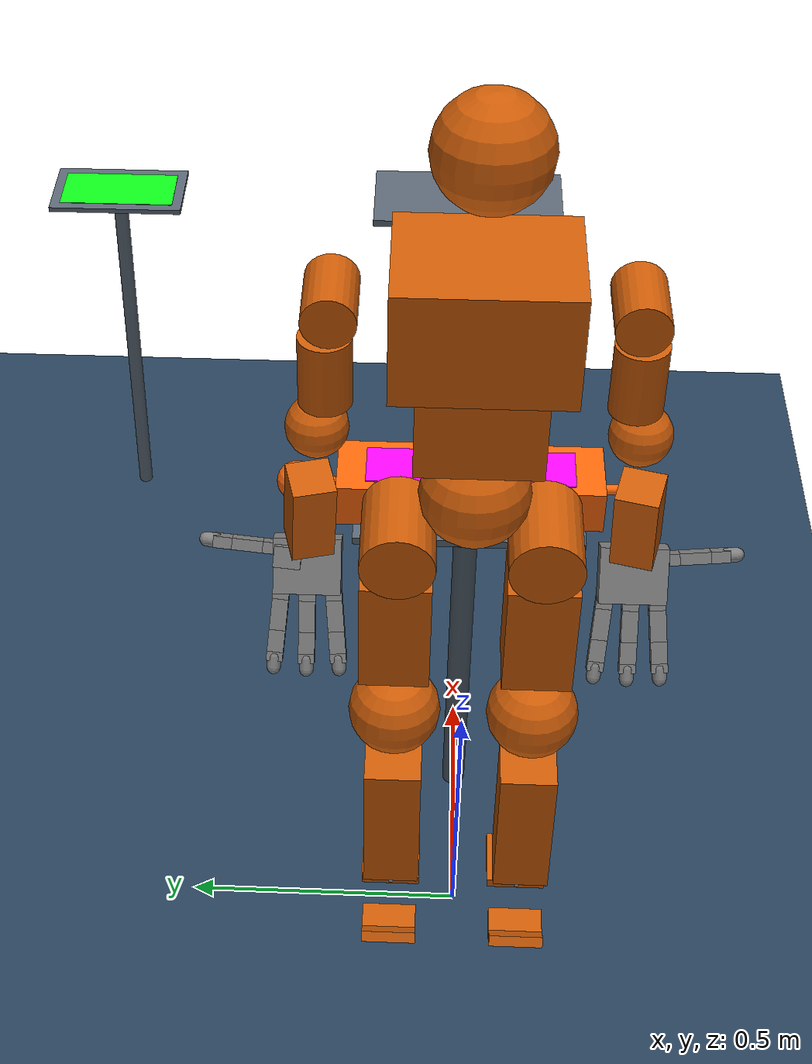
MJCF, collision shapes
<mujoco model="007 T800 active vision and bilateral Allegro — experimental">
  <compiler angle="radian" discardvisual="false" autolimits="true" eulerseq="zyx" />
  <option timestep="0.002" integrator="implicitfast" tolerance="1e-10" />
  <default>
    <default class="biped">
      <default class="collision">
        <geom group="3" contype="1" conaffinity="1" friction="1.0 0.005 0.0001" rgba="0.804 0.361 0.031 0.5" />
        <default class="collision_head">
          <geom type="sphere" size="0.09" pos="0.018 0 0.08" rgba="0.804 0.361 0.031 0.5" />
        </default>
        <default class="collision_torso_upper_box">
          <geom type="box" size="0.11 0.14 0.095" pos="-0.007 -0.001 0.25" rgba="0.804 0.361 0.031 0.5" />
        </default>
        <default class="collision_torso_lower_box">
          <geom type="box" size="0.09 0.10 0.07" pos="-0.007 -0.001 0.075" rgba="0.804 0.361 0.031 0.5" />
        </default>
        <default class="collision_base">
          <geom type="sphere" size="0.09" pos="-0.01 0 0.01" rgba="0.804 0.361 0.031 0.5" />
        </default>
        <default class="collision_left_fore_foot">
          <geom type="box" size="0.057 0.055 0.01" pos="0.1 0.00166 -0.054" rgba="0.804 0.361 0.031 0.5" />
        </default>
        <default class="collision_left_hind_foot">
          <geom type="box" size="0.03 0.05 0.01" pos="-0.053 0.00166 -0.054" rgba="0.804 0.361 0.031 0.5" />
        </default>
        <default class="collision_left_foot_toe">
          <geom type="box" size="0.013 0.06 0.01" quat="0.998 0 -0.061 0" pos="0.172 0.00166 -0.021" rgba="0.804 0.361 0.031 0.5" />
        </default>
        <default class="collision_left_foot_heel">
          <geom type="box" size="0.018 0.05 0.01" quat="0.956 0 0.292 0" pos="-0.092 0.00166 -0.045" rgba="0.804 0.361 0.031 0.5" />
        </default>
        <default class="collision_right_fore_foot">
          <geom type="box" size="0.057 0.055 0.01" pos="0.1 -0.00166 -0.054" rgba="0.804 0.361 0.031 0.5" />
        </default>
        <default class="collision_right_hind_foot">
          <geom type="box" size="0.03 0.05 0.01" pos="-0.053 0.00166 -0.054" rgba="0.804 0.361 0.031 0.5" />
        </default>
        <default class="collision_right_foot_toe">
          <geom type="box" size="0.013 0.06 0.01" quat="0.998 0 -0.061 0" pos="0.172 -0.00166 -0.021" rgba="0.804 0.361 0.031 0.5" />
        </default>
        <default class="collision_right_foot_heel">
          <geom type="box" size="0.018 0.05 0.01" quat="0.956 0 0.292 0" pos="-0.092 0.00166 -0.045" rgba="0.804 0.361 0.031 0.5" />
        </default>
        <default class="collision_left_wrist_end">
          <geom type="sphere" size="0.05" pos="0.026 -0.009 -0.06" rgba="0.804 0.361 0.031 0.5" />
        </default>
        <default class="collision_shoulder_yaw_left">
          <geom type="cylinder" size="0.042 0.06" pos="0.0 0.0 -0.04" quat="1 0 0 0" rgba="0.804 0.361 0.031 0.5" />
        </default>
        <default class="collision_elbow_pitch_left">
          <geom type="sphere" size="0.05" pos="0.0 0.0 -0.0" rgba="0.804 0.361 0.031 0.5" />
        </default>
        <default class="collision_elbow_yaw_left">
          <geom type="box" size="0.035 0.035 0.08" quat="0.988 0.011 -0.087 0.130" pos="0.014 0.005 -0.05" rgba="0.804 0.361 0.031 0.5" />
        </default>
        <default class="collision_shoulder_yaw_right">
          <geom type="cylinder" size="0.042 0.06" pos="0.0 0.0 -0.04" quat="1 0 0 0" rgba="0.804 0.361 0.031 0.5" />
        </default>
        <default class="collision_elbow_pitch_right">
          <geom type="sphere" size="0.05" pos="0.0 -0.0 -0.0" rgba="0.804 0.361 0.031 0.5" />
        </default>
        <default class="collision_elbow_yaw_right">
          <geom type="box" size="0.035 0.035 0.08" quat="0.988 -0.011 -0.087 -0.130" pos="0.014 -0.005 -0.05" rgba="0.804 0.361 0.031 0.5" />
        </default>
        <default class="collision_right_wrist_end">
          <geom type="sphere" size="0.05" pos="0.026 0.009 -0.06" rgba="0.804 0.361 0.031 0.5" />
        </default>
        <default class="collision_hip_left">
          <geom type="cylinder" size="0.062 0.08" pos="0.0 0.04 -0.10" quat="1 0 1 0" rgba="0.804 0.361 0.031 0.5" />
        </default>
        <default class="collision_hip_yaw_left">
          <geom type="box" size="0.06 0.06 0.11" pos="0.0 0.002 -0.10" quat="1 0 0 0" rgba="0.804 0.361 0.031 0.5" />
        </default>
        <default class="collision_hip_right">
          <geom type="cylinder" size="0.062 0.08" pos="0.0 -0.04 -0.10" quat="1 0 1 0" rgba="0.804 0.361 0.031 0.5" />
        </default>
        <default class="collision_hip_yaw_right">
          <geom type="box" size="0.06 0.06 0.11" pos="0.0 -0.002 -0.10" quat="1 0 0 0" rgba="0.804 0.361 0.031 0.5" />
        </default>
        <default class="collision_knee_left_1">
          <geom type="sphere" size="0.08" pos="-0.0 -0.0 -0.0" rgba="0.804 0.361 0.031 0.5" />
        </default>
        <default class="collision_knee_left_2">
          <geom type="box" size="0.05 0.05 0.14" pos="-0.02 -0.0 -0.25" quat="1 0 0 0" rgba="0.804 0.361 0.031 0.5" />
        </default>
        <default class="collision_knee_right_1">
          <geom type="sphere" size="0.08" pos="-0.0 0.0 -0.0" rgba="0.804 0.361 0.031 0.5" />
        </default>
        <default class="collision_knee_right_2">
          <geom type="box" size="0.05 0.05 0.14" pos="-0.02 0.0 -0.25" quat="1 0 0 0" rgba="0.804 0.361 0.031 0.5" />
        </default>
        <default class="collision_shoulder_roll_left">
          <geom type="cylinder" size="0.042 0.06" pos="0.0 0.0 -0.0" quat="1 0 1 0" rgba="0.804 0.361 0.031 0.5" />
        </default>
        <default class="collision_shoulder_roll_right">
          <geom type="cylinder" size="0.042 0.06" pos="0.0 0.0 -0.0" quat="1 0 1 0" rgba="0.804 0.361 0.031 0.5" />
        </default>
      </default>
      <default class="visual">
        <geom contype="0" conaffinity="0" group="2" />
      </default>
      <default class="joint">
        <joint damping="0.6" frictionloss="0.8" />
      </default>
    </default>
    <default class="lh_allegro_left">
      <joint axis="0 1 0" damping=".1" />
      <position kp="1" />
      <geom density="800" />
      <default class="lh_visual">
        <geom type="mesh" contype="0" conaffinity="0" group="2" material="lh_black" />
        <default class="lh_palm_visual">
          <geom mesh="lh_base_link" />
        </default>
        <default class="lh_base_visual">
          <geom mesh="lh_link_0.0" />
        </default>
        <default class="lh_proximal_visual">
          <geom mesh="lh_link_1.0" />
        </default>
        <default class="lh_medial_visual">
          <geom mesh="lh_link_2.0" />
        </default>
        <default class="lh_distal_visual">
          <geom mesh="lh_link_3.0" />
        </default>
        <default class="lh_fingertip_visual">
          <geom pos="0 0 0.0267" material="lh_white" mesh="lh_link_3.0_tip" />
        </default>
        <default class="lh_thumbtip_visual">
          <geom pos="0 0 0.0423" material="lh_white" mesh="lh_link_15.0_tip" />
        </default>
      </default>
      <default class="lh_collision">
        <geom group="3" type="box" mass="0" />
        <default class="lh_palm_collision">
          <geom size="0.0204 0.0565 0.0475" pos="-0.0093 0 -0.0475" />
        </default>
        <default class="lh_base_collision">
          <geom size="0.0098 0.01375 0.0082" pos="0 0 0.0082" />
          <default class="lh_thumb_base_collision">
            <geom size="0.0179 0.017 0.02275" pos="-0.0179 0.009 0.0145" />
          </default>
        </default>
        <default class="lh_proximal_collision">
          <geom size="0.0098 0.01375 0.027" pos="0 0 0.027" />
          <default class="lh_thumb_proximal_collision">
            <geom size="0.0098 0.01375 0.00885" pos="0 0 0.00885" />
          </default>
        </default>
        <default class="lh_medial_collision">
          <geom size="0.0098 0.01375 0.0192" pos="0 0 0.0192" />
          <default class="lh_thumb_medial_collision">
            <geom size="0.0098 0.01375 0.0257" pos="0 0 0.0257" />
          </default>
        </default>
        <default class="lh_distal_collision">
          <geom size="0.0098 0.01375 0.008" pos="0 0 0.008" />
          <default class="lh_thumb_distal_collision">
            <geom size="0.0098 0.01375 0.0157" pos="0 0 0.0157" />
          </default>
        </default>
        <default class="lh_fingertip_collision">
          <geom type="capsule" size="0.012 0.01" pos="0 0 0.019" />
          <default class="lh_thumbtip_collision">
            <geom type="capsule" size="0.012 0.008" pos="0 0 0.035" />
          </default>
        </default>
      </default>
      <default class="lh_base">
        <joint axis="0 0 1" range="-0.47 0.47" />
        <position ctrlrange="-0.47 0.47" />
      </default>
      <default class="lh_proximal">
        <joint range="-0.196 1.61" />
        <position ctrlrange="-0.196 1.61" />
      </default>
      <default class="lh_medial">
        <joint range="-0.174 1.709" />
        <position ctrlrange="-0.174 1.709" />
      </default>
      <default class="lh_distal">
        <joint range="-0.227 1.618" />
        <position ctrlrange="-0.227 1.618" />
      </default>
      <default class="lh_thumb_base">
        <joint axis="1 0 0" range="0.263 1.396" />
        <position ctrlrange="0.263 1.396" />
      </default>
      <default class="lh_thumb_proximal">
        <joint axis="0 0 -1" range="-0.105 1.163" />
        <position ctrlrange="-0.105 1.163" />
      </default>
      <default class="lh_thumb_medial">
        <joint range="-0.189 1.644" />
        <position ctrlrange="-0.189 1.644" />
      </default>
      <default class="lh_thumb_distal">
        <joint range="-0.162 1.719" />
        <position ctrlrange="-0.162 1.719" />
      </default>
    </default>
    <default class="rh_allegro_right">
      <joint axis="0 1 0" damping=".1" />
      <position kp="1" />
      <geom density="800" />
      <default class="rh_visual">
        <geom type="mesh" contype="0" conaffinity="0" group="2" material="rh_black" />
        <default class="rh_palm_visual">
          <geom mesh="rh_base_link" />
        </default>
        <default class="rh_base_visual">
          <geom mesh="rh_link_0.0" />
        </default>
        <default class="rh_proximal_visual">
          <geom mesh="rh_link_1.0" />
        </default>
        <default class="rh_medial_visual">
          <geom mesh="rh_link_2.0" />
        </default>
        <default class="rh_distal_visual">
          <geom mesh="rh_link_3.0" />
        </default>
        <default class="rh_fingertip_visual">
          <geom pos="0 0 0.0267" material="rh_white" mesh="rh_link_3.0_tip" />
        </default>
        <default class="rh_thumbtip_visual">
          <geom pos="0 0 0.0423" material="rh_white" mesh="rh_link_15.0_tip" />
        </default>
      </default>
      <default class="rh_collision">
        <geom group="3" type="box" mass="0" />
        <default class="rh_palm_collision">
          <geom size="0.0204 0.0565 0.0475" pos="-0.0093 0 -0.0475" />
        </default>
        <default class="rh_base_collision">
          <geom size="0.0098 0.01375 0.0082" pos="0 0 0.0082" />
          <default class="rh_thumb_base_collision">
            <geom size="0.0179 0.017 0.02275" pos="-0.0179 0.009 0.0145" />
          </default>
        </default>
        <default class="rh_proximal_collision">
          <geom size="0.0098 0.01375 0.027" pos="0 0 0.027" />
          <default class="rh_thumb_proximal_collision">
            <geom size="0.0098 0.01375 0.00885" pos="0 0 0.00885" />
          </default>
        </default>
        <default class="rh_medial_collision">
          <geom size="0.0098 0.01375 0.0192" pos="0 0 0.0192" />
          <default class="rh_thumb_medial_collision">
            <geom size="0.0098 0.01375 0.0257" pos="0 0 0.0257" />
          </default>
        </default>
        <default class="rh_distal_collision">
          <geom size="0.0098 0.01375 0.008" pos="0 0 0.008" />
          <default class="rh_thumb_distal_collision">
            <geom size="0.0098 0.01375 0.0157" pos="0 0 0.0157" />
          </default>
        </default>
        <default class="rh_fingertip_collision">
          <geom type="capsule" size="0.012 0.01" pos="0 0 0.019" />
          <default class="rh_thumbtip_collision">
            <geom type="capsule" size="0.012 0.008" pos="0 0 0.035" />
          </default>
        </default>
      </default>
      <default class="rh_base">
        <joint axis="0 0 1" range="-0.47 0.47" />
        <position ctrlrange="-0.47 0.47" />
      </default>
      <default class="rh_proximal">
        <joint range="-0.196 1.61" />
        <position ctrlrange="-0.196 1.61" />
      </default>
      <default class="rh_medial">
        <joint range="-0.174 1.709" />
        <position ctrlrange="-0.174 1.709" />
      </default>
      <default class="rh_distal">
        <joint range="-0.227 1.618" />
        <position ctrlrange="-0.227 1.618" />
      </default>
      <default class="rh_thumb_base">
        <joint axis="-1 0 0" range="0.263 1.396" />
        <position ctrlrange="0.263 1.396" />
      </default>
      <default class="rh_thumb_proximal">
        <joint axis="0 0 1" range="-0.105 1.163" />
        <position ctrlrange="-0.105 1.163" />
      </default>
      <default class="rh_thumb_medial">
        <joint range="-0.189 1.644" />
        <position ctrlrange="-0.189 1.644" />
      </default>
      <default class="rh_thumb_distal">
        <joint range="-0.162 1.719" />
        <position ctrlrange="-0.162 1.719" />
      </default>
    </default>
  </default>
  <asset>
    <material name="LINK_BASE" texture="LINK_BASE" />
    <material name="LINK_HIP_PITCH" texture="LINK_HIP_PITCH" />
    <material name="LINK_HIP_ROLL" texture="LINK_HIP_ROLL" />
    <material name="LINK_HIP_YAW" texture="LINK_HIP_YAW" />
    <material name="LINK_KNEE_PITCH" texture="LINK_KNEE_PITCH" />
    <material name="LINK_ANKLE_ROLL" texture="LINK_ANKLE_ROLL" />
    <material name="LINK_TORSO_YAW" texture="LINK_TORSO_YAW" />
    <material name="LINK_SHOULDER_PITCH" texture="LINK_SHOULDER_PITCH" />
    <material name="LINK_SHOULDER_ROLL" texture="LINK_SHOULDER_ROLL" />
    <material name="LINK_SHOULDER_YAW" texture="LINK_SHOULDER_YAW" />
    <material name="LINK_ELBOW_PITCH_L" texture="LINK_ELBOW_PITCH_L" />
    <material name="LINK_ELBOW_PITCH_R" texture="LINK_ELBOW_PITCH_R" />
    <material name="LINK_ELBOW_YAW_L" texture="LINK_ELBOW_YAW_L" />
    <material name="LINK_ELBOW_YAW_R" texture="LINK_ELBOW_YAW_R" />
    <material name="LINK_HEAD_YAW" texture="LINK_HEAD_YAW" />
    <texture type="2d" name="LINK_BASE" file="t800/robot/t800/texture/LINK_BASE.png" />
    <texture type="2d" name="LINK_HIP_PITCH" file="t800/robot/t800/texture/LINK_HIP_PITCH_L.png" />
    <texture type="2d" name="LINK_HIP_ROLL" file="t800/robot/t800/texture/LINK_HIP_ROLL_L.png" />
    <texture type="2d" name="LINK_HIP_YAW" file="t800/robot/t800/texture/LINK_HIP_YAW_L.png" />
    <texture type="2d" name="LINK_KNEE_PITCH" file="t800/robot/t800/texture/LINK_KNEE_PITCH_L.png" />
    <texture type="2d" name="LINK_ANKLE_ROLL" file="t800/robot/t800/texture/LINK_ANKLE_ROLL_L.png" />
    <texture type="2d" name="LINK_TORSO_YAW" file="t800/robot/t800/texture/LINK_TORSO_YAW.png" />
    <texture type="2d" name="LINK_SHOULDER_PITCH" file="t800/robot/t800/texture/LINK_SHOULDER_PITCH_L.png" />
    <texture type="2d" name="LINK_SHOULDER_ROLL" file="t800/robot/t800/texture/LINK_SHOULDER_ROLL_L.png" />
    <texture type="2d" name="LINK_SHOULDER_YAW" file="t800/robot/t800/texture/LINK_SHOULDER_YAW_L.png" />
    <texture type="2d" name="LINK_ELBOW_PITCH_L" file="t800/robot/t800/texture/LINK_ELBOW_PITCH_L.png" />
    <texture type="2d" name="LINK_ELBOW_PITCH_R" file="t800/robot/t800/texture/LINK_ELBOW_PITCH_R.png" />
    <texture type="2d" name="LINK_ELBOW_YAW_L" file="t800/robot/t800/texture/LINK_ELBOW_YAW_L.png" />
    <texture type="2d" name="LINK_ELBOW_YAW_R" file="t800/robot/t800/texture/LINK_ELBOW_YAW_R.png" />
    <texture type="2d" name="LINK_HEAD_YAW" file="t800/robot/t800/texture/LINK_HEAD_YAW.png" />
    <mesh name="LINK_BASE" file="t800/robot/t800/meshes/LINK_BASE.obj" />
    <mesh name="LINK_HIP_PITCH_L" file="t800/robot/t800/meshes/LINK_HIP_PITCH_L.obj" />
    <mesh name="LINK_HIP_ROLL_L" file="t800/robot/t800/meshes/LINK_HIP_ROLL_L.obj" />
    <mesh name="LINK_HIP_YAW_L" file="t800/robot/t800/meshes/LINK_HIP_YAW_L.obj" />
    <mesh name="LINK_KNEE_PITCH_L" file="t800/robot/t800/meshes/LINK_KNEE_PITCH_L.obj" />
    <mesh name="LINK_ANKLE_PITCH_L" file="t800/robot/t800/meshes/LINK_ANKLE_PITCH_L.obj" />
    <mesh name="LINK_ANKLE_ROLL_L" file="t800/robot/t800/meshes/LINK_ANKLE_ROLL_L.obj" />
    <mesh name="LINK_HIP_PITCH_R" file="t800/robot/t800/meshes/LINK_HIP_PITCH_R.obj" />
    <mesh name="LINK_HIP_ROLL_R" file="t800/robot/t800/meshes/LINK_HIP_ROLL_R.obj" />
    <mesh name="LINK_HIP_YAW_R" file="t800/robot/t800/meshes/LINK_HIP_YAW_R.obj" />
    <mesh name="LINK_KNEE_PITCH_R" file="t800/robot/t800/meshes/LINK_KNEE_PITCH_R.obj" />
    <mesh name="LINK_ANKLE_PITCH_R" file="t800/robot/t800/meshes/LINK_ANKLE_PITCH_R.obj" />
    <mesh name="LINK_ANKLE_ROLL_R" file="t800/robot/t800/meshes/LINK_ANKLE_ROLL_R.obj" />
    <mesh name="LINK_WAIST_YAW" file="t800/robot/t800/meshes/LINK_TORSO_YAW.obj" />
    <mesh name="LINK_SHOULDER_PITCH_L" file="t800/robot/t800/meshes/LINK_SHOULDER_PITCH_L.obj" />
    <mesh name="LINK_SHOULDER_ROLL_L" file="t800/robot/t800/meshes/LINK_SHOULDER_ROLL_L.obj" />
    <mesh name="LINK_SHOULDER_YAW_L" file="t800/robot/t800/meshes/LINK_SHOULDER_YAW_L.obj" />
    <mesh name="LINK_ELBOW_PITCH_L" file="t800/robot/t800/meshes/LINK_ELBOW_PITCH_L.obj" />
    <mesh name="LINK_ELBOW_YAW_L" file="t800/robot/t800/meshes/LINK_ELBOW_YAW_L.obj" />
    <mesh name="LINK_SHOULDER_PITCH_R" file="t800/robot/t800/meshes/LINK_SHOULDER_PITCH_R.obj" />
    <mesh name="LINK_SHOULDER_ROLL_R" file="t800/robot/t800/meshes/LINK_SHOULDER_ROLL_R.obj" />
    <mesh name="LINK_SHOULDER_YAW_R" file="t800/robot/t800/meshes/LINK_SHOULDER_YAW_R.obj" />
    <mesh name="LINK_ELBOW_PITCH_R" file="t800/robot/t800/meshes/LINK_ELBOW_PITCH_R.obj" />
    <mesh name="LINK_ELBOW_YAW_R" file="t800/robot/t800/meshes/LINK_ELBOW_YAW_R.obj" />
    <mesh name="LINK_HEAD_PITCH" file="t800/robot/t800/meshes/LINK_HEAD_PITCH.obj" />
    <mesh name="LINK_HEAD_YAW" file="t800/robot/t800/meshes/LINK_HEAD_YAW.obj" />
    <material name="lh_black" rgba="0.2 0.2 0.2 1" />
    <material name="lh_white" rgba="0.9 0.9 0.9 1" />
    <mesh file="allegro/assets/base_link_left.stl" name="lh_base_link_left" />
    <mesh file="allegro/assets/link_0.0.stl" name="lh_link_0.0" />
    <mesh file="allegro/assets/link_1.0.stl" name="lh_link_1.0" />
    <mesh file="allegro/assets/link_2.0.stl" name="lh_link_2.0" />
    <mesh file="allegro/assets/link_3.0.stl" name="lh_link_3.0" />
    <mesh file="allegro/assets/link_3.0_tip.stl" name="lh_link_3.0_tip" />
    <mesh file="allegro/assets/link_12.0_left.stl" name="lh_link_12.0_left" />
    <mesh file="allegro/assets/link_13.0.stl" name="lh_link_13.0" />
    <mesh file="allegro/assets/link_14.0.stl" name="lh_link_14.0" />
    <mesh file="allegro/assets/link_15.0.stl" name="lh_link_15.0" />
    <mesh file="allegro/assets/link_15.0_tip.stl" name="lh_link_15.0_tip" />
    <material name="rh_black" rgba="0.2 0.2 0.2 1" />
    <material name="rh_white" rgba="0.9 0.9 0.9 1" />
    <mesh file="allegro/assets/base_link.stl" name="rh_base_link" />
    <mesh file="allegro/assets/link_0.0.stl" name="rh_link_0.0" />
    <mesh file="allegro/assets/link_1.0.stl" name="rh_link_1.0" />
    <mesh file="allegro/assets/link_2.0.stl" name="rh_link_2.0" />
    <mesh file="allegro/assets/link_3.0.stl" name="rh_link_3.0" />
    <mesh file="allegro/assets/link_3.0_tip.stl" name="rh_link_3.0_tip" />
    <mesh file="allegro/assets/link_12.0_right.stl" name="rh_link_12.0_right" />
    <mesh file="allegro/assets/link_13.0.stl" name="rh_link_13.0" />
    <mesh file="allegro/assets/link_14.0.stl" name="rh_link_14.0" />
    <mesh file="allegro/assets/link_15.0.stl" name="rh_link_15.0" />
    <mesh file="allegro/assets/link_15.0_tip.stl" name="rh_link_15.0_tip" />
  </asset>
  <worldbody>
    <light name="spotlight" mode="targetbodycom" target="LINK_BASE" pos="0 -1 2" />
    <body name="LINK_BASE" pos="0 0 1.03">
      <inertial pos="0.01487209 -0.00011942 0.1673244" mass="10.083072" fullinertia="0.05060425 0.03390366 0.03284694 -7.548e-05 -0.00053095 -4.685e-05" />
      <geom type="mesh" rgba="0.79216 0.81961 0.93333 1" mesh="LINK_BASE" material="LINK_BASE" class="visual" />
      <geom class="collision_base" />
      <site name="base" pos="0.017949 -6.844E-05 0.21642" />
      <site name="imu" pos="0.0219 0 0.1252" />
      <freejoint />
      <body name="LINK_HIP_PITCH_L" pos="0 0.079178 0">
        <inertial pos="0.0061914 0.039194 -0.0989976" quat="0.703048 -0.000940502 -0.0835001 0.706222" mass="3.53619" diaginertia="0.00795732 0.00716152 0.00476425" />
        <joint name="J00_HIP_PITCH_L" pos="0 0 0" axis="0 0.965926 -0.258819" range="-3.316 2.269" actuatorfrcrange="-415 415" armature="0.2427264 " />
        <geom type="mesh" rgba="0.792157 0.819608 0.933333 1" mesh="LINK_HIP_PITCH_L" material="LINK_HIP_PITCH" class="visual" />
        <geom class="collision_hip_left" />
        <body name="LINK_HIP_ROLL_L" pos="0.004662 0.040322 -0.10752">
          <inertial pos="0.0375309 4.95e-06 -0.0348455" quat="0.954117 -3.76557e-05 0.299433 -0.000109257" mass="0.851442" diaginertia="0.00291994 0.00257237 0.0014565" />
          <joint name="J01_HIP_ROLL_L" pos="0 0 0" axis="1 0 0" range="-1.082 2.059" actuatorfrcrange="-370 370" armature="0.14110848" />
          <geom type="mesh" rgba="0.792157 0.819608 0.933333 1" mesh="LINK_HIP_ROLL_L" material="LINK_HIP_ROLL" class="visual" />
          <body name="LINK_HIP_YAW_L" pos="0.0094616 0 -0.080512">
            <inertial pos="-0.0182984 0.00236123 -0.176347" quat="0.709176 0.0588188 0.0462079 0.701053" mass="7.19482" diaginertia="0.115656 0.11402 0.0107766" />
            <joint name="J02_HIP_YAW_L" pos="0 0 0" axis="0 0 1" range="-1.42245 3.60228" actuatorfrcrange="-222 222" armature="0.0448737" />
            <geom type="mesh" rgba="0.792157 0.819608 0.933333 1" mesh="LINK_HIP_YAW_L" material="LINK_HIP_YAW" class="visual" />
            <geom class="collision_hip_yaw_left" />
            <body name="LINK_KNEE_PITCH_L" pos="-0.037707 0 -0.28792">
              <inertial pos="-0.0197449 0.00139162 -0.211907" quat="0.475454 0.0210361 0.0168989 0.879327" mass="5.99503" diaginertia="0.0858454 0.0856511 0.0115715" />
              <joint name="J03_KNEE_PITCH_L" pos="0 0 0" axis="0 1 0" range="-0.261667 2.355" actuatorfrcrange="-415 415" armature="0.2427264 " />
              <geom type="mesh" rgba="0.792157 0.819608 0.933333 1" mesh="LINK_KNEE_PITCH_L" material="LINK_KNEE_PITCH" class="visual" />
              <geom class="collision_knee_left_1" />
              <geom class="collision_knee_left_2" />
              <body name="LINK_ANKLE_PITCH_L" pos="-0.0027168 0 -0.43867">
                <inertial pos="-3.678e-05 0 -0.00887033" quat="0.707027 -0.0106245 -0.0106245 0.707027" mass="0.144221" diaginertia="8.493e-05 6.78768e-05 3.82432e-05" />
                <joint name="J04_ANKLE_PITCH_L" pos="0 0 0" axis="0 1 0" range="-0.68068 0.68068" actuatorfrcrange="-160 160" armature="0.0354625" />
                <geom type="mesh" rgba="0.796078 0.823529 0.937255 1" mesh="LINK_ANKLE_PITCH_L" class="visual" />
                <body name="LINK_ANKLE_ROLL_L" pos="0.0011073 0 -0.037928">
                  <inertial pos="-0.00128738 -0.00120638 -0.0229558" quat="0.462135 0.542362 0.559636 0.423182" mass="1.49439" diaginertia="0.00707073 0.0069149 0.00202774" />
                  <joint name="J05_ANKLE_ROLL_L" pos="0 0 0" axis="1 0 0" range="-0.3491 0.1745" actuatorfrcrange="-160 160" armature="0.0354625" />
                  <geom type="mesh" rgba="0.792157 0.819608 0.933333 1" mesh="LINK_ANKLE_ROLL_L" material="LINK_ANKLE_ROLL" class="visual" />
                  <body name="LINK_FOOT_L">
                    <inertial pos="0 0 0" mass="1e-3" diaginertia="1e-12 1e-12 1e-12" />
                    <geom class="collision_left_fore_foot" />
                    <geom class="collision_left_hind_foot" />
                    <geom class="collision_left_foot_heel" />
                    <site name="force_sensor_left_foot" />
                    <site name="torque_sensor_left_foot" />
                  </body>
                </body>
              </body>
            </body>
          </body>
        </body>
      </body>
      <body name="LINK_HIP_PITCH_R" pos="0 -0.079178 0">
        <inertial pos="0.0061914 -0.039194 -0.0989976" quat="0.706222 -0.0835001 -0.000940502 0.703048" mass="3.53619" diaginertia="0.00795732 0.00716152 0.00476425" />
        <joint name="J06_HIP_PITCH_R" pos="0 0 0" axis="0 0.965926 0.258819" range="-3.316 2.269" actuatorfrcrange="-415 415" armature="0.2427264 " />
        <geom type="mesh" rgba="0.792157 0.819608 0.933333 1" mesh="LINK_HIP_PITCH_R" material="LINK_HIP_PITCH" class="visual" />
        <geom class="collision_hip_right" />
        <body name="LINK_HIP_ROLL_R" pos="0.004662 -0.040322 -0.10752">
          <inertial pos="0.0375309 -4.95e-06 -0.0348455" quat="0.954117 3.76557e-05 0.299433 0.000109257" mass="0.851442" diaginertia="0.00291994 0.00257237 0.0014565" />
          <joint name="J07_HIP_ROLL_R" pos="0 0 0" axis="1 0 0" range="-2.059 1.082" actuatorfrcrange="-370 370" armature="0.14110848" />
          <geom type="mesh" rgba="0.792157 0.819608 0.933333 1" mesh="LINK_HIP_ROLL_R" material="LINK_HIP_ROLL" class="visual" />
          <body name="LINK_HIP_YAW_R" pos="0.0094616 0 -0.080512">
            <inertial pos="-0.0182984 -0.00236123 -0.176347" quat="0.701053 0.0462079 0.0588188 0.709176" mass="7.19482" diaginertia="0.115656 0.11402 0.0107766" />
            <joint name="J08_HIP_YAW_R" pos="0 0 0" axis="0 0 1" range="-3.60228 1.42245" actuatorfrcrange="-222 222" armature="0.0448737" />
            <geom type="mesh" rgba="0.792157 0.819608 0.933333 1" mesh="LINK_HIP_YAW_R" material="LINK_HIP_YAW" class="visual" />
            <geom class="collision_hip_yaw_right" />
            <body name="LINK_KNEE_PITCH_R" pos="-0.037707 0 -0.28792">
              <inertial pos="-0.0197449 -0.00139162 -0.211907" quat="0.879327 0.0168989 0.0210361 0.475454" mass="5.99503" diaginertia="0.0858454 0.0856511 0.0115715" />
              <joint name="J09_KNEE_PITCH_R" pos="0 0 0" axis="0 1 0" range="-0.261667 2.355" actuatorfrcrange="-415 415" armature="0.2427264 " />
              <geom type="mesh" rgba="0.792157 0.819608 0.933333 1" mesh="LINK_KNEE_PITCH_R" material="LINK_KNEE_PITCH" class="visual" />
              <geom class="collision_knee_right_1" />
              <geom class="collision_knee_right_2" />
              <body name="LINK_ANKLE_PITCH_R" pos="-0.0027168 0 -0.43867">
                <inertial pos="-3.678e-05 0 -0.00887033" quat="0.707027 -0.0106245 -0.0106245 0.707027" mass="0.144221" diaginertia="8.493e-05 6.78768e-05 3.82432e-05" />
                <joint name="J10_ANKLE_PITCH_R" pos="0 0 0" axis="0 1 0" range="-0.68068 0.68068" actuatorfrcrange="-160 160" armature="0.0354625" />
                <geom type="mesh" rgba="0.792157 0.819608 0.933333 1" mesh="LINK_ANKLE_PITCH_R" class="visual" />
                <body name="LINK_ANKLE_ROLL_R" pos="0.0011073 0 -0.037928">
                  <inertial pos="-0.00128738 0.00120638 -0.0229558" quat="0.423182 0.559636 0.542362 0.462135" mass="1.49439" diaginertia="0.00707073 0.0069149 0.00202774" />
                  <joint name="J11_ANKLE_ROLL_R" pos="0 0 0" axis="1 0 0" range="-0.1745 0.3491" actuatorfrcrange="-160 160" armature="0.0354625" />
                  <geom type="mesh" rgba="0.792157 0.819608 0.933333 1" mesh="LINK_ANKLE_ROLL_R" material="LINK_ANKLE_ROLL" class="visual" />
                  <body name="LINK_FOOT_R">
                    <inertial pos="0 0 0" mass="1e-3" diaginertia="1e-12 1e-12 1e-12" />
                    <geom class="collision_right_fore_foot" />
                    <geom class="collision_right_hind_foot" />
                    <geom class="collision_right_foot_heel" />
                    <site name="force_sensor_right_foot" />
                    <site name="torque_sensor_right_foot" />
                  </body>
                </body>
              </body>
            </body>
          </body>
        </body>
      </body>
      <body name="LINK_WAIST_YAW" pos="0 0 0.10384">
        <inertial pos="-0.00880845 -0.0006861 0.222762" quat="0.998368 -0.00027422 -0.0570422 -0.0028246" mass="19.4108" diaginertia="0.256742 0.207512 0.15304" />
        <joint name="J12_TORSO_YAW" pos="0 0 0" axis="0 0 1" range="-4.381 1.2392" actuatorfrcrange="-222 222" armature="0.0448737" />
        <geom type="mesh" rgba="0.792157 0.819608 0.933333 1" mesh="LINK_WAIST_YAW" material="LINK_TORSO_YAW" class="visual" />
        <geom class="collision_torso_lower_box" />
        <geom class="collision_torso_upper_box" />
        <body name="LINK_SHOULDER_PITCH_L" pos="-0.011 0.16303 0.27889">
          <inertial pos="-0.00615457 0.0528418 -0.0124871" quat="0.835175 0.547699 0.0286813 0.0410699" mass="1.76883" diaginertia="0.00240978 0.00213951 0.00130718" />
          <joint name="J13_SHOULDER_PITCH_L" pos="0 0 0" axis="0 0.996779 0.0801989" range="-2.967 2.793" actuatorfrcrange="-160 160" armature="0.0354625" />
          <geom type="mesh" rgba="0.792157 0.819608 0.933333 1" mesh="LINK_SHOULDER_PITCH_L" material="LINK_SHOULDER_PITCH" class="visual" />
          <body name="LINK_SHOULDER_ROLL_L" pos="0 0.062533 -0.015455">
            <inertial pos="-0.00557192 0.00446659 -0.0271293" quat="0.699304 -0.0958375 -0.196856 0.680468" mass="0.682893" diaginertia="0.00216819 0.00159945 0.0014132" />
            <joint name="J14_SHOULDER_ROLL_L" pos="0 0 0" axis="1 0 0" range="-0.384 2.443" actuatorfrcrange="-160 160" armature="0.0354625" />
            <geom type="mesh" rgba="0.792157 0.819608 0.933333 1" mesh="LINK_SHOULDER_ROLL_L" material="LINK_SHOULDER_ROLL" class="visual" />
            <geom class="collision_shoulder_roll_left" />
            <body name="LINK_SHOULDER_YAW_L" pos="3.4602e-05 0.0085246 -0.082712">
              <inertial pos="0.00062214 0.00554981 -0.0898056" quat="0.706399 0.0160146 -0.024757 0.7072" mass="2.55202" diaginertia="0.00997961 0.00983419 0.00114425" />
              <joint name="J15_SHOULDER_YAW_L" pos="0 0 0" axis="0 -0.0714971 0.997441" range="-2.618 2.618" actuatorfrcrange="-160 160" armature="0.0354625" />
              <geom type="mesh" rgba="0.792157 0.819608 0.933333 1" mesh="LINK_SHOULDER_YAW_L" material="LINK_SHOULDER_YAW" class="visual" />
              <geom class="collision_shoulder_yaw_left" />
              <body name="LINK_ELBOW_PITCH_L" pos="0.0019252 0.013597 -0.15075">
                <inertial pos="-0.00883497 0.00295203 -0.0733334" quat="0.992911 0.0869004 0.0117583 0.0802349" mass="1.19527" diaginertia="0.00319667 0.00310646 0.00126793" />
                <joint name="J16_ELBOW_PITCH_L" pos="0 0 0" axis="0 0.997441 0.0714971" range="-2.286 0.262" actuatorfrcrange="-160 160" armature="0.0354625" />
                <geom type="mesh" rgba="0.792157 0.819608 0.933333 1" mesh="LINK_ELBOW_PITCH_L" material="LINK_ELBOW_PITCH_L" class="visual" />
                <geom class="collision_elbow_pitch_left" />
                <body name="LINK_ELBOW_YAW_L" pos="-0.0022091 0.0094362 -0.13182">
                  <inertial pos="0.0130094 0.00447975 -0.0584384" quat="0.702494 -0.0450935 -0.106593 0.702216" mass="1.07882" diaginertia="0.00215017 0.00201667 0.000854073" />
                  <joint name="J17_ELBOW_YAW_L" pos="0 0 0" axis="-0.216439 -0.0698028 0.973797" range="-2.618 2.618" actuatorfrcrange="-52 52" armature="0.00671625" />
                  <geom type="mesh" rgba="0.792157 0.819608 0.933333 1" mesh="LINK_ELBOW_YAW_L" material="LINK_ELBOW_YAW_L" class="visual" />
                  <geom class="collision_elbow_yaw_left" />
                  <body name="LINK_WRIST_END_L" pos="0.029436 0.0124855 -0.13222151">
                    <inertial pos="0 0 0" mass="1e-3" diaginertia="1e-12 1e-12 1e-12" />
                    <body name="lh_palm" quat="0 0.9689124217106447 0 -0.24740395925452294" childclass="lh_allegro_left" pos="0 0 -.11">
                      <geom quat="1 -1 0 0" class="lh_palm_visual" mesh="lh_base_link_left" />
                      <geom class="lh_palm_collision" />
                      <body name="lh_rf_base" pos="0 0.0435 -0.001542" quat="0.999048 -0.0436194 0 0">
                        <joint name="lh_rfj0" class="lh_base" />
                        <geom class="lh_base_visual" />
                        <geom class="lh_base_collision" />
                        <body name="lh_rf_proximal" pos="0 0 0.0164">
                          <joint name="lh_rfj1" class="lh_proximal" />
                          <geom class="lh_proximal_visual" />
                          <geom class="lh_proximal_collision" />
                          <body name="lh_rf_medial" pos="0 0 0.054">
                            <joint name="lh_rfj2" class="lh_medial" />
                            <geom class="lh_medial_visual" />
                            <geom class="lh_medial_collision" />
                            <body name="lh_rf_distal" pos="0 0 0.0384">
                              <joint name="lh_rfj3" class="lh_distal" />
                              <geom class="lh_distal_visual" />
                              <geom class="lh_distal_collision" />
                              <body name="lh_rf_tip">
                                <geom class="lh_fingertip_visual" />
                                <geom class="lh_fingertip_collision" />
                              </body>
                            </body>
                          </body>
                        </body>
                      </body>
                      <body name="lh_mf_base" pos="0 0 0.0007">
                        <joint name="lh_mfj0" class="lh_base" />
                        <geom class="lh_base_visual" />
                        <geom class="lh_base_collision" />
                        <body name="lh_mf_proximal" pos="0 0 0.0164">
                          <joint name="lh_mfj1" class="lh_proximal" />
                          <geom class="lh_proximal_visual" />
                          <geom class="lh_proximal_collision" />
                          <body name="lh_mf_medial" pos="0 0 0.054">
                            <joint name="lh_mfj2" class="lh_medial" />
                            <geom class="lh_medial_visual" />
                            <geom class="lh_medial_collision" />
                            <body name="lh_mf_distal" pos="0 0 0.0384">
                              <joint name="lh_mfj3" class="lh_distal" />
                              <geom class="lh_distal_visual" />
                              <geom class="lh_distal_collision" />
                              <body name="lh_mf_tip">
                                <geom class="lh_fingertip_visual" />
                                <geom class="lh_fingertip_collision" />
                              </body>
                            </body>
                          </body>
                        </body>
                      </body>
                      <body name="lh_ff_base" pos="0 -0.0435 -0.001542" quat="0.999048 0.0436194 0 0">
                        <joint name="lh_ffj0" class="lh_base" />
                        <geom class="lh_base_visual" />
                        <geom class="lh_base_collision" />
                        <body name="lh_ff_proximal" pos="0 0 0.0164">
                          <joint name="lh_ffj1" class="lh_proximal" />
                          <geom class="lh_proximal_visual" />
                          <geom class="lh_proximal_collision" />
                          <body name="lh_ff_medial" pos="0 0 0.054">
                            <joint name="lh_ffj2" class="lh_medial" />
                            <geom class="lh_medial_visual" />
                            <geom class="lh_medial_collision" />
                            <body name="lh_ff_distal" pos="0 0 0.0384">
                              <joint name="lh_ffj3" class="lh_distal" />
                              <geom class="lh_distal_visual" />
                              <geom class="lh_distal_collision" />
                              <body name="lh_ff_tip">
                                <geom class="lh_fingertip_visual" />
                                <geom class="lh_fingertip_collision" />
                              </body>
                            </body>
                          </body>
                        </body>
                      </body>
                      <body name="lh_th_base" pos="-0.0182 -0.019333 -0.045987" quat="0.477714 0.521334 -0.521334 0.477714">
                        <joint name="lh_thj0" class="lh_thumb_base" />
                        <geom quat="0 1 0 0" class="lh_visual" mesh="lh_link_12.0_left" />
                        <geom class="lh_thumb_base_collision" />
                        <body name="lh_th_proximal" pos="-0.027 -0.005 0.0399">
                          <joint name="lh_thj1" class="lh_thumb_proximal" />
                          <geom class="lh_visual" mesh="lh_link_13.0" />
                          <geom class="lh_thumb_proximal_collision" />
                          <body name="lh_th_medial" pos="0 0 0.0177">
                            <joint name="lh_thj2" class="lh_thumb_medial" />
                            <geom class="lh_visual" mesh="lh_link_14.0" />
                            <geom class="lh_thumb_medial_collision" />
                            <body name="lh_th_distal" pos="0 0 0.0514">
                              <joint name="lh_thj3" class="lh_thumb_distal" />
                              <geom class="lh_visual" mesh="lh_link_15.0" />
                              <geom class="lh_thumb_distal_collision" />
                              <body name="lh_th_tip">
                                <geom class="lh_thumbtip_visual" />
                                <geom class="lh_thumbtip_collision" />
                              </body>
                            </body>
                          </body>
                        </body>
                      </body>
                      <site name="lh_grasp" pos=".06 0 .015" size=".003" rgba="1 .8 0 1" />
                    </body>
                  </body>
                </body>
              </body>
            </body>
          </body>
        </body>
        <body name="LINK_SHOULDER_PITCH_R" pos="-0.011 -0.16303 0.27889">
          <inertial pos="-0.00615457 -0.0528418 -0.0124871" quat="0.547699 0.835175 -0.0410699 -0.0286813" mass="1.76883" diaginertia="0.00240978 0.00213951 0.00130718" />
          <joint name="J18_SHOULDER_PITCH_R" pos="0 0 0" axis="0 0.996779 -0.0801989" range="-2.967 2.793" actuatorfrcrange="-160 160" armature="0.0354625" />
          <geom type="mesh" rgba="0.792157 0.819608 0.933333 1" mesh="LINK_SHOULDER_PITCH_R" material="LINK_SHOULDER_PITCH" class="visual" />
          <body name="LINK_SHOULDER_ROLL_R" pos="0 -0.062533 -0.015455">
            <inertial pos="-0.00557192 -0.00446659 -0.0271293" quat="0.680468 -0.196856 -0.0958375 0.699304" mass="0.682893" diaginertia="0.00216819 0.00159945 0.0014132" />
            <joint name="J19_SHOULDER_ROLL_R" pos="0 0 0" axis="1 0 0" range="-2.443 0.384" actuatorfrcrange="-160 160" armature="0.0354625" />
            <geom type="mesh" rgba="0.792157 0.819608 0.933333 1" mesh="LINK_SHOULDER_ROLL_R" material="LINK_SHOULDER_ROLL" class="visual" />
            <geom class="collision_shoulder_roll_right" />
            <body name="LINK_SHOULDER_YAW_R" pos="3.4602e-05 -0.0085246 -0.082712">
              <inertial pos="0.00062214 -0.00554981 -0.0898056" quat="0.7072 -0.024757 0.0160146 0.706399" mass="2.55202" diaginertia="0.00997961 0.00983419 0.00114425" />
              <joint name="J20_SHOULDER_YAW_R" pos="0 0 0" axis="0 0.0714971 0.997441" range="-2.618 2.618" actuatorfrcrange="-160 160" armature="0.0354625" />
              <geom type="mesh" rgba="0.792157 0.819608 0.933333 1" mesh="LINK_SHOULDER_YAW_R" material="LINK_SHOULDER_YAW" class="visual" />
              <geom class="collision_shoulder_yaw_right" />
              <body name="LINK_ELBOW_PITCH_R" pos="0.0019252 -0.013597 -0.15075">
                <inertial pos="-0.00883497 -0.00295203 -0.0733334" quat="0.992911 -0.0869004 0.0117583 -0.0802349" mass="1.19527" diaginertia="0.00319667 0.00310646 0.00126793" />
                <joint name="J21_ELBOW_PITCH_R" pos="0 0 0" axis="0 0.997441 -0.0714971" range="-2.286 0.262" actuatorfrcrange="-160 160" armature="0.0354625" />
                <geom type="mesh" rgba="0.792157 0.819608 0.933333 1" mesh="LINK_ELBOW_PITCH_R" material="LINK_ELBOW_PITCH_R" class="visual" />
                <geom class="collision_elbow_pitch_right" />
                <body name="LINK_ELBOW_YAW_R" pos="-0.0022091 -0.0094362 -0.13182">
                  <inertial pos="0.0130094 -0.00447975 -0.0584384" quat="0.702216 -0.106593 -0.0450935 0.702494" mass="1.07882" diaginertia="0.00215017 0.00201667 0.000854073" />
                  <joint name="J22_ELBOW_YAW_R" pos="0 0 0" axis="-0.216439 0.0698028 0.973797" range="-2.618 2.618" actuatorfrcrange="-52 52" armature="0.00671625" />
                  <geom type="mesh" rgba="0.792157 0.819608 0.933333 1" mesh="LINK_ELBOW_YAW_R" material="LINK_ELBOW_YAW_R" class="visual" />
                  <geom class="collision_elbow_yaw_right" />
                  <body name="LINK_WRIST_END_R" pos="0.029436 -0.0124855 -0.13222151">
                    <inertial pos="0 0 0" mass="1e-3" diaginertia="1e-12 1e-12 1e-12" />
                    <body name="rh_palm" quat="0 0.9689124217106447 0 -0.24740395925452294" childclass="rh_allegro_right" pos="0 0 -.11">
                      <geom class="rh_palm_visual" mesh="rh_base_link" />
                      <geom class="rh_palm_collision" />
                      <body name="rh_ff_base" pos="0 0.0435 -0.001542" quat="0.999048 -0.0436194 0 0">
                        <joint name="rh_ffj0" class="rh_base" />
                        <geom class="rh_base_visual" />
                        <geom class="rh_base_collision" />
                        <body name="rh_ff_proximal" pos="0 0 0.0164">
                          <joint name="rh_ffj1" class="rh_proximal" />
                          <geom class="rh_proximal_visual" />
                          <geom class="rh_proximal_collision" />
                          <body name="rh_ff_medial" pos="0 0 0.054">
                            <joint name="rh_ffj2" class="rh_medial" />
                            <geom class="rh_medial_visual" />
                            <geom class="rh_medial_collision" />
                            <body name="rh_ff_distal" pos="0 0 0.0384">
                              <joint name="rh_ffj3" class="rh_distal" />
                              <geom class="rh_distal_visual" />
                              <geom class="rh_distal_collision" />
                              <body name="rh_ff_tip">
                                <geom class="rh_fingertip_visual" />
                                <geom class="rh_fingertip_collision" />
                              </body>
                            </body>
                          </body>
                        </body>
                      </body>
                      <body name="rh_mf_base" pos="0 0 0.0007">
                        <joint name="rh_mfj0" class="rh_base" />
                        <geom class="rh_base_visual" />
                        <geom class="rh_base_collision" />
                        <body name="rh_mf_proximal" pos="0 0 0.0164">
                          <joint name="rh_mfj1" class="rh_proximal" />
                          <geom class="rh_proximal_visual" />
                          <geom class="rh_proximal_collision" />
                          <body name="rh_mf_medial" pos="0 0 0.054">
                            <joint name="rh_mfj2" class="rh_medial" />
                            <geom class="rh_medial_visual" />
                            <geom class="rh_medial_collision" />
                            <body name="rh_mf_distal" pos="0 0 0.0384">
                              <joint name="rh_mfj3" class="rh_distal" />
                              <geom class="rh_distal_visual" />
                              <geom class="rh_distal_collision" />
                              <body name="rh_mf_tip">
                                <geom class="rh_fingertip_visual" />
                                <geom class="rh_fingertip_collision" />
                              </body>
                            </body>
                          </body>
                        </body>
                      </body>
                      <body name="rh_rf_base" pos="0 -0.0435 -0.001542" quat="0.999048 0.0436194 0 0">
                        <joint name="rh_rfj0" class="rh_base" />
                        <geom class="rh_base_visual" />
                        <geom class="rh_base_collision" />
                        <body name="rh_rf_proximal" pos="0 0 0.0164">
                          <joint name="rh_rfj1" class="rh_proximal" />
                          <geom class="rh_proximal_visual" />
                          <geom class="rh_proximal_collision" />
                          <body name="rh_rf_medial" pos="0 0 0.054">
                            <joint name="rh_rfj2" class="rh_medial" />
                            <geom class="rh_medial_visual" />
                            <geom class="rh_medial_collision" />
                            <body name="rh_rf_distal" pos="0 0 0.0384">
                              <joint name="rh_rfj3" class="rh_distal" />
                              <geom class="rh_distal_visual" />
                              <geom class="rh_distal_collision" />
                              <body name="rh_rf_tip">
                                <geom class="rh_fingertip_visual" />
                                <geom class="rh_fingertip_collision" />
                              </body>
                            </body>
                          </body>
                        </body>
                      </body>
                      <body name="rh_th_base" pos="-0.0182 0.019333 -0.045987" quat="0.477714 -0.521334 -0.521334 -0.477714">
                        <joint name="rh_thj0" class="rh_thumb_base" />
                        <geom class="rh_visual" mesh="rh_link_12.0_right" />
                        <geom class="rh_thumb_base_collision" />
                        <body name="rh_th_proximal" pos="-0.027 0.005 0.0399">
                          <joint name="rh_thj1" class="rh_thumb_proximal" />
                          <geom class="rh_visual" mesh="rh_link_13.0" />
                          <geom class="rh_thumb_proximal_collision" />
                          <body name="rh_th_medial" pos="0 0 0.0177">
                            <joint name="rh_thj2" class="rh_thumb_medial" />
                            <geom class="rh_visual" mesh="rh_link_14.0" />
                            <geom class="rh_thumb_medial_collision" />
                            <body name="rh_th_distal" pos="0 0 0.0514">
                              <joint name="rh_thj3" class="rh_thumb_distal" />
                              <geom class="rh_visual" mesh="rh_link_15.0" />
                              <geom class="rh_thumb_distal_collision" />
                              <body name="rh_th_tip">
                                <geom class="rh_thumbtip_visual" />
                                <geom class="rh_thumbtip_collision" />
                              </body>
                            </body>
                          </body>
                        </body>
                      </body>
                      <site name="rh_grasp" pos=".06 0 .015" size=".003" rgba="1 .8 0 1" />
                    </body>
                  </body>
                </body>
              </body>
            </body>
          </body>
        </body>
        <body name="LINK_HEAD_PITCH" pos="-0.0113 0 0.38604">
          <inertial pos="0.00012689 0.00010014 0.0672953" quat="0.999045 -0.0436093 0.00159275 0.00209103" mass="0.707966" diaginertia="0.000660474 0.000564278 0.000455089" />
          <joint name="J23_HEAD_PITCH" pos="0 0 0" axis="0 1 0" range="-0.523 0.523" actuatorfrcrange="-52 52" armature="0.00671625" />
          <geom type="mesh" rgba="0.792157 0.819608 0.933333 1" mesh="LINK_HEAD_PITCH" class="visual" />
          <body name="LINK_HEAD_YAW" pos="0 0 0.040199">
            <inertial pos="0.0181326 4.92e-06 0.0928944" quat="0.338158 0.621066 0.621323 0.337468" mass="1.72377" diaginertia="0.00848513 0.00826129 0.0065396" />
            <joint name="J24_HEAD_YAW" pos="0 0 0" axis="0 0 1" range="-1.222 1.222" actuatorfrcrange="-52 52" armature="0.00671625" />
            <geom type="mesh" rgba="0.792157 0.819608 0.933333 1" mesh="LINK_HEAD_YAW" material="LINK_HEAD_YAW" class="visual" />
            <geom class="collision_head" />
            <camera name="eyes" pos=".10 0 .08" xyaxes="0 -1 0 0.573576436351046 0 0.8191520442889918" fovy="65" />
            <geom name="camera_housing" type="box" pos=".085 0 .08" size=".012 .035 .012" rgba=".1 .15 .2 1" contype="0" conaffinity="0" mass="0" />
          </body>
        </body>
      </body>
    </body>
    <geom name="source_table" type="box" pos="0.23 0.0 0.8029999999999999" size=".10 .20 .007" rgba=".35 .40 .45 1" condim="6" friction="1 .005 .001" />
    <geom name="source_leg" type="cylinder" pos="0.31 0.0 0.39799999999999996" size=".022 0.39799999999999996" rgba=".3 .35 .4 1" />
    <geom name="destination_table" type="box" pos="1.23 0.0 0.8029999999999999" size=".10 .20 .007" rgba=".35 .40 .45 1" condim="6" friction="1 .005 .001" />
    <geom name="destination_leg" type="cylinder" pos="1.31 0.0 0.39799999999999996" size=".022 0.39799999999999996" rgba=".3 .35 .4 1" />
    <geom name="destination_marker_plate" type="box" pos="1.23 0.75 0.8049999999999999" size=".08 .14 .005" rgba=".35 .4 .45 1" />
    <geom name="destination_marker_post" type="cylinder" pos="1.23 0.75 0.39999999999999997" size=".015 0.39999999999999997" rgba=".35 .4 .45 1" />
    <geom name="destination_marker" type="box" pos="1.23 0.75 0.8105" size=".06 .12 .0004" rgba=".05 1 .1 1" contype="0" conaffinity="0" mass="0" />
    <body name="payload" pos="0.23 0.0 0.85">
      <freejoint name="payload_free" />
      <geom name="payload_box" type="box" size="0.065 0.23 0.04" mass="0.15" rgba="1 .4 .04 1" condim="6" friction="1 .005 .001" />
      <geom name="handle_-1" type="sphere" pos="0 -0.3 0" size="0.035" mass=".025" rgba="1 .4 .04 1" condim="6" friction="1 .005 .001" />
      <geom name="handle_stem_-1" type="capsule" fromto="0 -0.22 0 0 -0.3 0" size=".009" mass=".005" rgba="1 .4 .04 1" />
      <geom name="handle_1" type="sphere" pos="0 0.3 0" size="0.035" mass=".025" rgba="1 .4 .04 1" condim="6" friction="1 .005 .001" />
      <geom name="handle_stem_1" type="capsule" fromto="0 0.22 0 0 0.3 0" size=".009" mass=".005" rgba="1 .4 .04 1" />
      <geom name="visual_marker" type="box" pos="0 0 .041" size=".045 .18 .001" rgba="1 .02 1 1" contype="0" conaffinity="0" mass="0" />
    </body>
  </worldbody>
  <actuator>
    <motor name="motor_J00_HIP_PITCH_L" joint="J00_HIP_PITCH_L" gear="1" ctrllimited="true" ctrlrange="-415 415" />
    <motor name="motor_J01_HIP_ROLL_L" joint="J01_HIP_ROLL_L" gear="1" ctrllimited="true" ctrlrange="-370 370" />
    <motor name="motor_J02_HIP_YAW_L" joint="J02_HIP_YAW_L" gear="1" ctrllimited="true" ctrlrange="-222 222" />
    <motor name="motor_J03_KNEE_PITCH_L" joint="J03_KNEE_PITCH_L" gear="1" ctrllimited="true" ctrlrange="-415 415" />
    <motor name="motor_J04_ANKLE_PITCH_L" joint="J04_ANKLE_PITCH_L" gear="1" ctrllimited="true" ctrlrange="-160 160" />
    <motor name="motor_J05_ANKLE_ROLL_L" joint="J05_ANKLE_ROLL_L" gear="1" ctrllimited="true" ctrlrange="-160 160" />
    <motor name="motor_J06_HIP_PITCH_R" joint="J06_HIP_PITCH_R" gear="1" ctrllimited="true" ctrlrange="-415 415" />
    <motor name="motor_J07_HIP_ROLL_R" joint="J07_HIP_ROLL_R" gear="1" ctrllimited="true" ctrlrange="-370 370" />
    <motor name="motor_J08_HIP_YAW_R" joint="J08_HIP_YAW_R" gear="1" ctrllimited="true" ctrlrange="-222 222" />
    <motor name="motor_J09_KNEE_PITCH_R" joint="J09_KNEE_PITCH_R" gear="1" ctrllimited="true" ctrlrange="-415 415" />
    <motor name="motor_J10_ANKLE_PITCH_R" joint="J10_ANKLE_PITCH_R" gear="1" ctrllimited="true" ctrlrange="-160 160" />
    <motor name="motor_J11_ANKLE_ROLL_R" joint="J11_ANKLE_ROLL_R" gear="1" ctrllimited="true" ctrlrange="-160 160" />
    <motor name="motor_J12_TORSO_YAW" joint="J12_TORSO_YAW" gear="1" ctrllimited="true" ctrlrange="-222 222" />
    <motor name="motor_J13_SHOULDER_PITCH_L" joint="J13_SHOULDER_PITCH_L" gear="1" ctrllimited="true" ctrlrange="-160 160" />
    <motor name="motor_J14_SHOULDER_ROLL_L" joint="J14_SHOULDER_ROLL_L" gear="1" ctrllimited="true" ctrlrange="-160 160" />
    <motor name="motor_J15_SHOULDER_YAW_L" joint="J15_SHOULDER_YAW_L" gear="1" ctrllimited="true" ctrlrange="-160 160" />
    <motor name="motor_J16_ELBOW_PITCH_L" joint="J16_ELBOW_PITCH_L" gear="1" ctrllimited="true" ctrlrange="-160 160" />
    <motor name="motor_J17_ELBOW_YAW_L" joint="J17_ELBOW_YAW_L" gear="1" ctrllimited="true" ctrlrange="-52 52" />
    <motor name="motor_J18_SHOULDER_PITCH_R" joint="J18_SHOULDER_PITCH_R" gear="1" ctrllimited="true" ctrlrange="-160 160" />
    <motor name="motor_J19_SHOULDER_ROLL_R" joint="J19_SHOULDER_ROLL_R" gear="1" ctrllimited="true" ctrlrange="-160 160" />
    <motor name="motor_J20_SHOULDER_YAW_R" joint="J20_SHOULDER_YAW_R" gear="1" ctrllimited="true" ctrlrange="-160 160" />
    <motor name="motor_J21_ELBOW_PITCH_R" joint="J21_ELBOW_PITCH_R" gear="1" ctrllimited="true" ctrlrange="-160 160" />
    <motor name="motor_J22_ELBOW_YAW_R" joint="J22_ELBOW_YAW_R" gear="1" ctrllimited="true" ctrlrange="-52 52" />
    <motor name="motor_J23_HEAD_PITCH" joint="J23_HEAD_PITCH" gear="1" ctrllimited="true" ctrlrange="-52 52" />
    <motor name="motor_J24_HEAD_YAW" joint="J24_HEAD_YAW" gear="1" ctrllimited="true" ctrlrange="-52 52" />
    <position name="lh_ffa0" joint="lh_ffj0" class="lh_base" />
    <position name="lh_ffa1" joint="lh_ffj1" class="lh_proximal" />
    <position name="lh_ffa2" joint="lh_ffj2" class="lh_medial" />
    <position name="lh_ffa3" joint="lh_ffj3" class="lh_distal" />
    <position name="lh_mfa0" joint="lh_mfj0" class="lh_base" />
    <position name="lh_mfa1" joint="lh_mfj1" class="lh_proximal" />
    <position name="lh_mfa2" joint="lh_mfj2" class="lh_medial" />
    <position name="lh_mfa3" joint="lh_mfj3" class="lh_distal" />
    <position name="lh_rfa0" joint="lh_rfj0" class="lh_base" />
    <position name="lh_rfa1" joint="lh_rfj1" class="lh_proximal" />
    <position name="lh_rfa2" joint="lh_rfj2" class="lh_medial" />
    <position name="lh_rfa3" joint="lh_rfj3" class="lh_distal" />
    <position name="lh_tha0" joint="lh_thj0" class="lh_thumb_base" />
    <position name="lh_tha1" joint="lh_thj1" class="lh_thumb_proximal" />
    <position name="lh_tha2" joint="lh_thj2" class="lh_thumb_medial" />
    <position name="lh_tha3" joint="lh_thj3" class="lh_thumb_distal" />
    <position name="rh_ffa0" joint="rh_ffj0" class="rh_base" />
    <position name="rh_ffa1" joint="rh_ffj1" class="rh_proximal" />
    <position name="rh_ffa2" joint="rh_ffj2" class="rh_medial" />
    <position name="rh_ffa3" joint="rh_ffj3" class="rh_distal" />
    <position name="rh_mfa0" joint="rh_mfj0" class="rh_base" />
    <position name="rh_mfa1" joint="rh_mfj1" class="rh_proximal" />
    <position name="rh_mfa2" joint="rh_mfj2" class="rh_medial" />
    <position name="rh_mfa3" joint="rh_mfj3" class="rh_distal" />
    <position name="rh_rfa0" joint="rh_rfj0" class="rh_base" />
    <position name="rh_rfa1" joint="rh_rfj1" class="rh_proximal" />
    <position name="rh_rfa2" joint="rh_rfj2" class="rh_medial" />
    <position name="rh_rfa3" joint="rh_rfj3" class="rh_distal" />
    <position name="rh_tha0" joint="rh_thj0" class="rh_thumb_base" />
    <position name="rh_tha1" joint="rh_thj1" class="rh_thumb_proximal" />
    <position name="rh_tha2" joint="rh_thj2" class="rh_thumb_medial" />
    <position name="rh_tha3" joint="rh_thj3" class="rh_thumb_distal" />
  </actuator>
  <sensor>
    <framequat name="base_link_quaternion" objtype="site" objname="base" />
    <framepos name="base_link_position" objtype="site" objname="base" />
    <framelinvel name="base_link_linear_velocity" objtype="site" objname="base" />
    <frameangvel name="base_link_angular_velocity" objtype="site" objname="base" />
    <framequat name="imu_link_quaternion" objtype="site" objname="imu" />
    <framepos name="imu_link_position" objtype="site" objname="imu" />
    <framelinvel name="imu_link_linear_velocity" objtype="site" objname="imu" />
    <frameangvel name="imu_link_angular_velocity" objtype="site" objname="imu" />
    <framequat name="imu_quaternion" objtype="site" objname="imu" />
    <accelerometer name="imu_linear_acceleration" noise="0" cutoff="0" site="imu" />
    <gyro name="imu_angular_velocity" noise="0" cutoff="0" site="imu" />
    <force name="force_left_foot" site="force_sensor_left_foot" />
    <torque name="torque_left_foot" site="torque_sensor_left_foot" />
    <force name="force_right_foot" site="force_sensor_right_foot" />
    <torque name="torque_right_foot" site="torque_sensor_right_foot" />
  </sensor>
  <statistic center="0 0 0.5" extent="1" />
  <visual>
    <headlight diffuse="0.6 0.6 0.6" ambient="0.3 0.3 0.3" specular="0 0 0" />
    <rgba haze="0.15 0.25 0.35 1" />
    <global azimuth="150" elevation="-20" />
    <quality shadowsize="0" />
  </visual>
  <visual>
    <rgba com="1 0.84 0 0.5" contactforce="0.8 0.36 0.36 1" contactpoint="1.0 1.0 0.6 0.4" />
    <scale com="1" forcewidth="0.02" contactwidth="0.01" contactheight="0.02" framewidth="0.05" framelength="0.6" />
    <map force="0.01" />
  </visual>
  <asset>
    <texture type="2d" name="groundplane" builtin="checker" mark="edge" rgb1="0.2 0.3 0.4" rgb2="0.1 0.2 0.3" markrgb="0.8 0.8 0.8" width="1000" height="1000" />
    <material name="groundplane" texture="groundplane" texuniform="true" texrepeat="5 5" reflectance="0" />
  </asset>
  <worldbody>
    <light pos="0 0 10" dir="0 0 -1" directional="true" />
    <geom name="floor" size="0 5 0.125" type="plane" material="groundplane" conaffinity="7" condim="3" friction="1.0" />
  </worldbody>
  <contact>
    <exclude body1="lh_palm" body2="lh_ff_base" />
    <exclude body1="lh_palm" body2="lh_mf_base" />
    <exclude body1="lh_palm" body2="lh_rf_base" />
    <exclude body1="lh_palm" body2="lh_th_base" />
    <exclude body1="lh_palm" body2="lh_th_proximal" />
    <exclude body1="rh_palm" body2="rh_ff_base" />
    <exclude body1="rh_palm" body2="rh_mf_base" />
    <exclude body1="rh_palm" body2="rh_rf_base" />
    <exclude body1="rh_palm" body2="rh_th_base" />
    <exclude body1="rh_palm" body2="rh_th_proximal" />
  </contact>
</mujoco>
